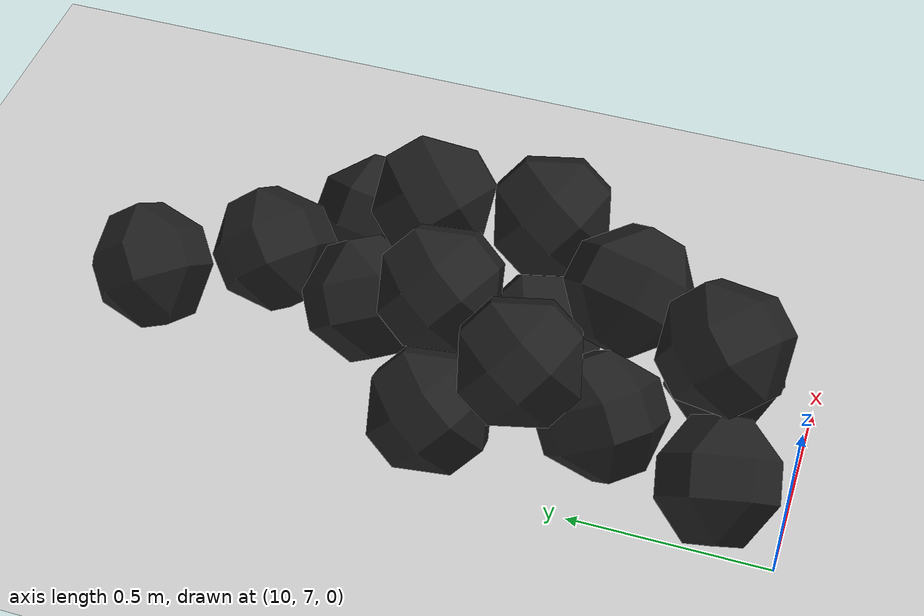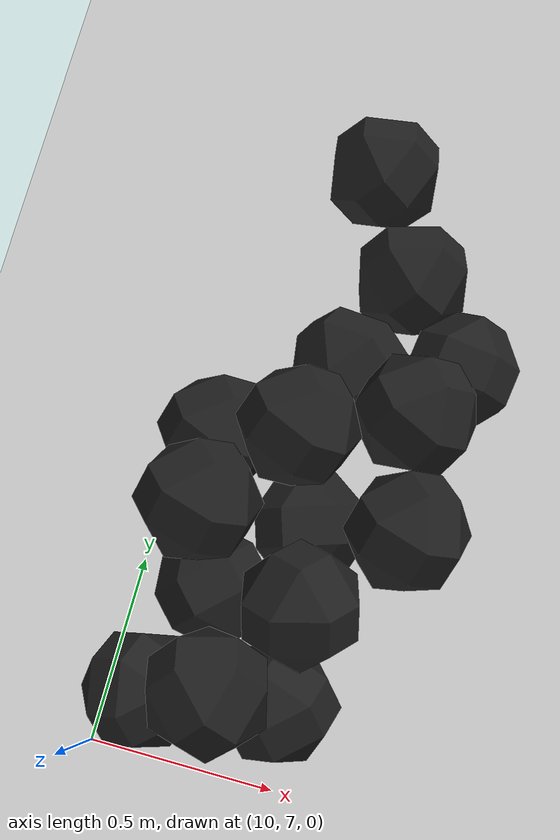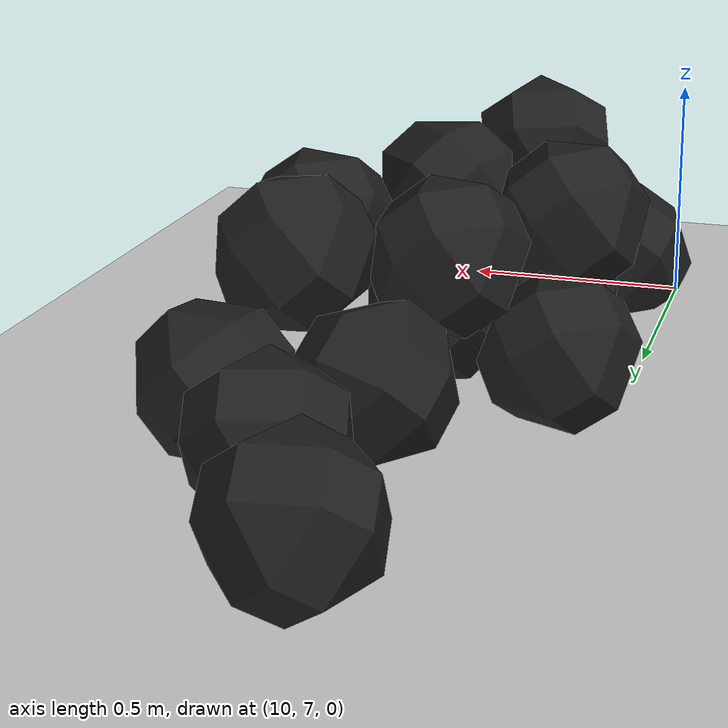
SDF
<sdf version="1.7">
 <world name="default">
  <model name="ground_plane">
   <static>1</static>
   <link name="link">
    <collision name="collision">
     <geometry><plane><normal>0 0 1</normal><size>100 100</size></plane></geometry>
     <surface><friction><ode><mu>100</mu><mu2>50</mu2></ode></friction></surface>
    </collision>
    <visual name="visual">
     <cast_shadows>0</cast_shadows>
     <geometry><plane><normal>0 0 1</normal><size>100 100</size></plane></geometry>
     <material>
      <script><uri>file://media/materials/scripts/gazebo.material</uri><name>Gazebo/Grey</name></script>
     </material>
    </visual>
   </link>
  </model>
  <model name="haoduomiantiaa_11">
   <link name="link_0">
    <inertial>
     <mass>0.2</mass>
     <inertia>
      <ixx>0.166667</ixx>
      <ixy>0</ixy>
      <ixz>0</ixz>
      <iyy>0.166667</iyy>
      <iyz>0</iyz>
      <izz>0.166667</izz>
     </inertia>
    </inertial>
    <visual name="visual">
     <geometry>
      <mesh>
       <uri>/home/lihaoyang/catkin_ws/src/pudong_gazebo/world/stl/haoduomianti.stl</uri>
       <scale>1 1 1</scale>
      </mesh>
     </geometry>
     <material>
      <lighting>1</lighting>
      <script><uri>file://media/materials/scripts/gazebo.material</uri><name>Gazebo/Black</name></script>
      <shader type="pixel"><normal_map>__default__</normal_map></shader>
      <ambient>0.3 0.3 0.3 1</ambient>
      <diffuse>0.7 0.7 0.7 1</diffuse>
      <specular>0.01 0.01 0.01 1</specular>
      <emissive>0 0 0 1</emissive>
     </material>
    </visual>
    <collision name="collision">
     <geometry>
      <mesh>
       <uri>/home/lihaoyang/catkin_ws/src/pudong_gazebo/world/stl/haoduomianti.stl</uri>
       <scale>1 1 1</scale>
      </mesh>
     </geometry>
     <surface>
      <friction>
       <ode><mu>1</mu><mu2>1</mu2><fdir1>0 0 0</fdir1><slip1>0</slip1><slip2>0</slip2></ode>
       <torsional>
        <coefficient>1</coefficient>
        <patch_radius>0</patch_radius>
        <surface_radius>0</surface_radius>
        <use_patch_radius>1</use_patch_radius>
        <ode><slip>0</slip></ode>
       </torsional>
      </friction>
      <bounce><restitution_coefficient>0</restitution_coefficient><threshold>1e+06</threshold></bounce>
      <contact>
       <collide_without_contact>0</collide_without_contact>
       <collide_without_contact_bitmask>1</collide_without_contact_bitmask>
       <collide_bitmask>1</collide_bitmask>
       <ode>
        <soft_cfm>0</soft_cfm>
        <soft_erp>0.2</soft_erp>
        <kp>1e+13</kp>
        <kd>1</kd>
        <max_vel>0.01</max_vel>
        <min_depth>0</min_depth>
       </ode>
       <bullet>
        <split_impulse>1</split_impulse>
        <split_impulse_penetration_threshold>-0.01</split_impulse_penetration_threshold>
        <soft_cfm>0</soft_cfm>
        <soft_erp>0.2</soft_erp>
        <kp>1e+13</kp>
        <kd>1</kd>
       </bullet>
      </contact>
     </surface>
    </collision>
   </link>
   <static>0</static>
   <pose>10.3108 7.37183 -0.074737 0.055494 -0.784628 0.711347</pose>
  </model>
  <model name="haoduomiantiaa_21">
   <link name="link_0">
    <inertial>
     <mass>0.2</mass>
     <inertia>
      <ixx>0.166667</ixx>
      <ixy>0</ixy>
      <ixz>0</ixz>
      <iyy>0.166667</iyy>
      <iyz>0</iyz>
      <izz>0.166667</izz>
     </inertia>
    </inertial>
    <visual name="visual">
     <geometry>
      <mesh>
       <uri>/home/lihaoyang/catkin_ws/src/pudong_gazebo/world/stl/haoduomianti.stl</uri>
       <scale>1 1 1</scale>
      </mesh>
     </geometry>
     <material>
      <lighting>1</lighting>
      <script><uri>file://media/materials/scripts/gazebo.material</uri><name>Gazebo/Black</name></script>
      <shader type="pixel"><normal_map>__default__</normal_map></shader>
      <ambient>0.3 0.3 0.3 1</ambient>
      <diffuse>0.7 0.7 0.7 1</diffuse>
      <specular>0.01 0.01 0.01 1</specular>
      <emissive>0 0 0 1</emissive>
     </material>
    </visual>
    <collision name="collision">
     <geometry>
      <mesh>
       <uri>/home/lihaoyang/catkin_ws/src/pudong_gazebo/world/stl/haoduomianti.stl</uri>
       <scale>1 1 1</scale>
      </mesh>
     </geometry>
     <surface>
      <friction>
       <ode><mu>1</mu><mu2>1</mu2><fdir1>0 0 0</fdir1><slip1>0</slip1><slip2>0</slip2></ode>
       <torsional>
        <coefficient>1</coefficient>
        <patch_radius>0</patch_radius>
        <surface_radius>0</surface_radius>
        <use_patch_radius>1</use_patch_radius>
        <ode><slip>0</slip></ode>
       </torsional>
      </friction>
      <bounce><restitution_coefficient>0</restitution_coefficient><threshold>1e+06</threshold></bounce>
      <contact>
       <collide_without_contact>0</collide_without_contact>
       <collide_without_contact_bitmask>1</collide_without_contact_bitmask>
       <collide_bitmask>1</collide_bitmask>
       <ode>
        <soft_cfm>0</soft_cfm>
        <soft_erp>0.2</soft_erp>
        <kp>1e+13</kp>
        <kd>1</kd>
        <max_vel>0.01</max_vel>
        <min_depth>0</min_depth>
       </ode>
       <bullet>
        <split_impulse>1</split_impulse>
        <split_impulse_penetration_threshold>-0.01</split_impulse_penetration_threshold>
        <soft_cfm>0</soft_cfm>
        <soft_erp>0.2</soft_erp>
        <kp>1e+13</kp>
        <kd>1</kd>
       </bullet>
      </contact>
     </surface>
    </collision>
   </link>
   <static>0</static>
   <pose>10.6792 8.07566 -0.079109 1.44966 -0.781731 3.09453</pose>
  </model>
  <model name="haoduomiantiaa_23">
   <link name="link_0">
    <inertial>
     <mass>0.2</mass>
     <inertia>
      <ixx>0.166667</ixx>
      <ixy>0</ixy>
      <ixz>0</ixz>
      <iyy>0.166667</iyy>
      <iyz>0</iyz>
      <izz>0.166667</izz>
     </inertia>
    </inertial>
    <visual name="visual">
     <geometry>
      <mesh>
       <uri>/home/lihaoyang/catkin_ws/src/pudong_gazebo/world/stl/haoduomianti.stl</uri>
       <scale>1 1 1</scale>
      </mesh>
     </geometry>
     <material>
      <lighting>1</lighting>
      <script><uri>file://media/materials/scripts/gazebo.material</uri><name>Gazebo/Black</name></script>
      <shader type="pixel"><normal_map>__default__</normal_map></shader>
      <ambient>0.3 0.3 0.3 1</ambient>
      <diffuse>0.7 0.7 0.7 1</diffuse>
      <specular>0.01 0.01 0.01 1</specular>
      <emissive>0 0 0 1</emissive>
     </material>
    </visual>
    <collision name="collision">
     <geometry>
      <mesh>
       <uri>/home/lihaoyang/catkin_ws/src/pudong_gazebo/world/stl/haoduomianti.stl</uri>
       <scale>1 1 1</scale>
      </mesh>
     </geometry>
     <surface>
      <friction>
       <ode><mu>1</mu><mu2>1</mu2><fdir1>0 0 0</fdir1><slip1>0</slip1><slip2>0</slip2></ode>
       <torsional>
        <coefficient>1</coefficient>
        <patch_radius>0</patch_radius>
        <surface_radius>0</surface_radius>
        <use_patch_radius>1</use_patch_radius>
        <ode><slip>0</slip></ode>
       </torsional>
      </friction>
      <bounce><restitution_coefficient>0</restitution_coefficient><threshold>1e+06</threshold></bounce>
      <contact>
       <collide_without_contact>0</collide_without_contact>
       <collide_without_contact_bitmask>1</collide_without_contact_bitmask>
       <collide_bitmask>1</collide_bitmask>
       <ode>
        <soft_cfm>0</soft_cfm>
        <soft_erp>0.2</soft_erp>
        <kp>1e+13</kp>
        <kd>1</kd>
        <max_vel>0.01</max_vel>
        <min_depth>0</min_depth>
       </ode>
       <bullet>
        <split_impulse>1</split_impulse>
        <split_impulse_penetration_threshold>-0.01</split_impulse_penetration_threshold>
        <soft_cfm>0</soft_cfm>
        <soft_erp>0.2</soft_erp>
        <kp>1e+13</kp>
        <kd>1</kd>
       </bullet>
      </contact>
     </surface>
    </collision>
   </link>
   <static>0</static>
   <pose>10.354 8.69849 -0.115479 0.785404 -0.615481 2.76349</pose>
  </model>
  <model name="haoduomiantiaa_28">
   <link name="link_0">
    <inertial>
     <mass>0.2</mass>
     <inertia>
      <ixx>0.166667</ixx>
      <ixy>0</ixy>
      <ixz>0</ixz>
      <iyy>0.166667</iyy>
      <iyz>0</iyz>
      <izz>0.166667</izz>
     </inertia>
    </inertial>
    <visual name="visual">
     <geometry>
      <mesh>
       <uri>/home/lihaoyang/catkin_ws/src/pudong_gazebo/world/stl/haoduomianti.stl</uri>
       <scale>1 1 1</scale>
      </mesh>
     </geometry>
     <material>
      <lighting>1</lighting>
      <script><uri>file://media/materials/scripts/gazebo.material</uri><name>Gazebo/Black</name></script>
      <shader type="pixel"><normal_map>__default__</normal_map></shader>
      <ambient>0.3 0.3 0.3 1</ambient>
      <diffuse>0.7 0.7 0.7 1</diffuse>
      <specular>0.01 0.01 0.01 1</specular>
      <emissive>0 0 0 1</emissive>
     </material>
    </visual>
    <collision name="collision">
     <geometry>
      <mesh>
       <uri>/home/lihaoyang/catkin_ws/src/pudong_gazebo/world/stl/haoduomianti.stl</uri>
       <scale>1 1 1</scale>
      </mesh>
     </geometry>
     <surface>
      <friction>
       <ode><mu>1</mu><mu2>1</mu2><fdir1>0 0 0</fdir1><slip1>0</slip1><slip2>0</slip2></ode>
       <torsional>
        <coefficient>1</coefficient>
        <patch_radius>0</patch_radius>
        <surface_radius>0</surface_radius>
        <use_patch_radius>1</use_patch_radius>
        <ode><slip>0</slip></ode>
       </torsional>
      </friction>
      <bounce><restitution_coefficient>0</restitution_coefficient><threshold>1e+06</threshold></bounce>
      <contact>
       <collide_without_contact>0</collide_without_contact>
       <collide_without_contact_bitmask>1</collide_without_contact_bitmask>
       <collide_bitmask>1</collide_bitmask>
       <ode>
        <soft_cfm>0</soft_cfm>
        <soft_erp>0.2</soft_erp>
        <kp>1e+13</kp>
        <kd>1</kd>
        <max_vel>0.01</max_vel>
        <min_depth>0</min_depth>
       </ode>
       <bullet>
        <split_impulse>1</split_impulse>
        <split_impulse_penetration_threshold>-0.01</split_impulse_penetration_threshold>
        <soft_cfm>0</soft_cfm>
        <soft_erp>0.2</soft_erp>
        <kp>1e+13</kp>
        <kd>1</kd>
       </bullet>
      </contact>
     </surface>
    </collision>
   </link>
   <static>0</static>
   <pose>10.4571 7.22847 -0.113943 0.78693 -0.620922 -1.88374</pose>
  </model>
  <model name="haoduomiantiaa_31">
   <link name="link_0">
    <inertial>
     <mass>0.2</mass>
     <inertia>
      <ixx>0.166667</ixx>
      <ixy>0</ixy>
      <ixz>0</ixz>
      <iyy>0.166667</iyy>
      <iyz>0</iyz>
      <izz>0.166667</izz>
     </inertia>
    </inertial>
    <visual name="visual">
     <geometry>
      <mesh>
       <uri>/home/lihaoyang/catkin_ws/src/pudong_gazebo/world/stl/haoduomianti.stl</uri>
       <scale>1 1 1</scale>
      </mesh>
     </geometry>
     <material>
      <lighting>1</lighting>
      <script><uri>file://media/materials/scripts/gazebo.material</uri><name>Gazebo/Black</name></script>
      <shader type="pixel"><normal_map>__default__</normal_map></shader>
      <ambient>0.3 0.3 0.3 1</ambient>
      <diffuse>0.7 0.7 0.7 1</diffuse>
      <specular>0.01 0.01 0.01 1</specular>
      <emissive>0 0 0 1</emissive>
     </material>
    </visual>
    <collision name="collision">
     <geometry>
      <mesh>
       <uri>/home/lihaoyang/catkin_ws/src/pudong_gazebo/world/stl/haoduomianti.stl</uri>
       <scale>1 1 1</scale>
      </mesh>
     </geometry>
     <surface>
      <friction>
       <ode><mu>1</mu><mu2>1</mu2><fdir1>0 0 0</fdir1><slip1>0</slip1><slip2>0</slip2></ode>
       <torsional>
        <coefficient>1</coefficient>
        <patch_radius>0</patch_radius>
        <surface_radius>0</surface_radius>
        <use_patch_radius>1</use_patch_radius>
        <ode><slip>0</slip></ode>
       </torsional>
      </friction>
      <bounce><restitution_coefficient>0</restitution_coefficient><threshold>1e+06</threshold></bounce>
      <contact>
       <collide_without_contact>0</collide_without_contact>
       <collide_without_contact_bitmask>1</collide_without_contact_bitmask>
       <collide_bitmask>1</collide_bitmask>
       <ode>
        <soft_cfm>0</soft_cfm>
        <soft_erp>0.2</soft_erp>
        <kp>1e+13</kp>
        <kd>1</kd>
        <max_vel>0.01</max_vel>
        <min_depth>0</min_depth>
       </ode>
       <bullet>
        <split_impulse>1</split_impulse>
        <split_impulse_penetration_threshold>-0.01</split_impulse_penetration_threshold>
        <soft_cfm>0</soft_cfm>
        <soft_erp>0.2</soft_erp>
        <kp>1e+13</kp>
        <kd>1</kd>
       </bullet>
      </contact>
     </surface>
    </collision>
   </link>
   <static>0</static>
   <pose>10.4564 7.56483 -0.078263 1.46181 -0.782426 -2.746</pose>
  </model>
  <model name="haoduomiantiaa_56">
   <link name="link_0">
    <inertial>
     <mass>0.2</mass>
     <inertia>
      <ixx>0.166667</ixx>
      <ixy>0</ixy>
      <ixz>0</ixz>
      <iyy>0.166667</iyy>
      <iyz>0</iyz>
      <izz>0.166667</izz>
     </inertia>
    </inertial>
    <visual name="visual">
     <geometry>
      <mesh>
       <uri>/home/lihaoyang/catkin_ws/src/pudong_gazebo/world/stl/haoduomianti.stl</uri>
       <scale>1 1 1</scale>
      </mesh>
     </geometry>
     <material>
      <lighting>1</lighting>
      <script><uri>file://media/materials/scripts/gazebo.material</uri><name>Gazebo/Black</name></script>
      <shader type="pixel"><normal_map>__default__</normal_map></shader>
      <ambient>0.3 0.3 0.3 1</ambient>
      <diffuse>0.7 0.7 0.7 1</diffuse>
      <specular>0.01 0.01 0.01 1</specular>
      <emissive>0 0 0 1</emissive>
     </material>
    </visual>
    <collision name="collision">
     <geometry>
      <mesh>
       <uri>/home/lihaoyang/catkin_ws/src/pudong_gazebo/world/stl/haoduomianti.stl</uri>
       <scale>1 1 1</scale>
      </mesh>
     </geometry>
     <surface>
      <friction>
       <ode><mu>1</mu><mu2>1</mu2><fdir1>0 0 0</fdir1><slip1>0</slip1><slip2>0</slip2></ode>
       <torsional>
        <coefficient>1</coefficient>
        <patch_radius>0</patch_radius>
        <surface_radius>0</surface_radius>
        <use_patch_radius>1</use_patch_radius>
        <ode><slip>0</slip></ode>
       </torsional>
      </friction>
      <bounce><restitution_coefficient>0</restitution_coefficient><threshold>1e+06</threshold></bounce>
      <contact>
       <collide_without_contact>0</collide_without_contact>
       <collide_without_contact_bitmask>1</collide_without_contact_bitmask>
       <collide_bitmask>1</collide_bitmask>
       <ode>
        <soft_cfm>0</soft_cfm>
        <soft_erp>0.2</soft_erp>
        <kp>1e+13</kp>
        <kd>1</kd>
        <max_vel>0.01</max_vel>
        <min_depth>0</min_depth>
       </ode>
       <bullet>
        <split_impulse>1</split_impulse>
        <split_impulse_penetration_threshold>-0.01</split_impulse_penetration_threshold>
        <soft_cfm>0</soft_cfm>
        <soft_erp>0.2</soft_erp>
        <kp>1e+13</kp>
        <kd>1</kd>
       </bullet>
      </contact>
     </surface>
    </collision>
   </link>
   <static>0</static>
   <pose>10.4461 7.48404 0.083698 0.808611 -0.599981 -0.281819</pose>
  </model>
  <model name="haoduomiantiaa_58">
   <link name="link_0">
    <inertial>
     <mass>0.2</mass>
     <inertia>
      <ixx>0.166667</ixx>
      <ixy>0</ixy>
      <ixz>0</ixz>
      <iyy>0.166667</iyy>
      <iyz>0</iyz>
      <izz>0.166667</izz>
     </inertia>
    </inertial>
    <visual name="visual">
     <geometry>
      <mesh>
       <uri>/home/lihaoyang/catkin_ws/src/pudong_gazebo/world/stl/haoduomianti.stl</uri>
       <scale>1 1 1</scale>
      </mesh>
     </geometry>
     <material>
      <lighting>1</lighting>
      <script><uri>file://media/materials/scripts/gazebo.material</uri><name>Gazebo/Black</name></script>
      <shader type="pixel"><normal_map>__default__</normal_map></shader>
      <ambient>0.3 0.3 0.3 1</ambient>
      <diffuse>0.7 0.7 0.7 1</diffuse>
      <specular>0.01 0.01 0.01 1</specular>
      <emissive>0 0 0 1</emissive>
     </material>
    </visual>
    <collision name="collision">
     <geometry>
      <mesh>
       <uri>/home/lihaoyang/catkin_ws/src/pudong_gazebo/world/stl/haoduomianti.stl</uri>
       <scale>1 1 1</scale>
      </mesh>
     </geometry>
     <surface>
      <friction>
       <ode><mu>1</mu><mu2>1</mu2><fdir1>0 0 0</fdir1><slip1>0</slip1><slip2>0</slip2></ode>
       <torsional>
        <coefficient>1</coefficient>
        <patch_radius>0</patch_radius>
        <surface_radius>0</surface_radius>
        <use_patch_radius>1</use_patch_radius>
        <ode><slip>0</slip></ode>
       </torsional>
      </friction>
      <bounce><restitution_coefficient>0</restitution_coefficient><threshold>1e+06</threshold></bounce>
      <contact>
       <collide_without_contact>0</collide_without_contact>
       <collide_without_contact_bitmask>1</collide_without_contact_bitmask>
       <collide_bitmask>1</collide_bitmask>
       <ode>
        <soft_cfm>0</soft_cfm>
        <soft_erp>0.2</soft_erp>
        <kp>1e+13</kp>
        <kd>1</kd>
        <max_vel>0.01</max_vel>
        <min_depth>0</min_depth>
       </ode>
       <bullet>
        <split_impulse>1</split_impulse>
        <split_impulse_penetration_threshold>-0.01</split_impulse_penetration_threshold>
        <soft_cfm>0</soft_cfm>
        <soft_erp>0.2</soft_erp>
        <kp>1e+13</kp>
        <kd>1</kd>
       </bullet>
      </contact>
     </surface>
    </collision>
   </link>
   <static>0</static>
   <pose>10.3169 7.90973 0.075776 0.742973 -0.604494 -0.903565</pose>
  </model>
  <model name="haoduomiantiaa_68">
   <link name="link_0">
    <inertial>
     <mass>0.2</mass>
     <inertia>
      <ixx>0.166667</ixx>
      <ixy>0</ixy>
      <ixz>0</ixz>
      <iyy>0.166667</iyy>
      <iyz>0</iyz>
      <izz>0.166667</izz>
     </inertia>
    </inertial>
    <visual name="visual">
     <geometry>
      <mesh>
       <uri>/home/lihaoyang/catkin_ws/src/pudong_gazebo/world/stl/haoduomianti.stl</uri>
       <scale>1 1 1</scale>
      </mesh>
     </geometry>
     <material>
      <lighting>1</lighting>
      <script><uri>file://media/materials/scripts/gazebo.material</uri><name>Gazebo/Black</name></script>
      <shader type="pixel"><normal_map>__default__</normal_map></shader>
      <ambient>0.3 0.3 0.3 1</ambient>
      <diffuse>0.7 0.7 0.7 1</diffuse>
      <specular>0.01 0.01 0.01 1</specular>
      <emissive>0 0 0 1</emissive>
     </material>
    </visual>
    <collision name="collision">
     <geometry>
      <mesh>
       <uri>/home/lihaoyang/catkin_ws/src/pudong_gazebo/world/stl/haoduomianti.stl</uri>
       <scale>1 1 1</scale>
      </mesh>
     </geometry>
     <surface>
      <friction>
       <ode><mu>1</mu><mu2>1</mu2><fdir1>0 0 0</fdir1><slip1>0</slip1><slip2>0</slip2></ode>
       <torsional>
        <coefficient>1</coefficient>
        <patch_radius>0</patch_radius>
        <surface_radius>0</surface_radius>
        <use_patch_radius>1</use_patch_radius>
        <ode><slip>0</slip></ode>
       </torsional>
      </friction>
      <bounce><restitution_coefficient>0</restitution_coefficient><threshold>1e+06</threshold></bounce>
      <contact>
       <collide_without_contact>0</collide_without_contact>
       <collide_without_contact_bitmask>1</collide_without_contact_bitmask>
       <collide_bitmask>1</collide_bitmask>
       <ode>
        <soft_cfm>0</soft_cfm>
        <soft_erp>0.2</soft_erp>
        <kp>1e+13</kp>
        <kd>1</kd>
        <max_vel>0.01</max_vel>
        <min_depth>0</min_depth>
       </ode>
       <bullet>
        <split_impulse>1</split_impulse>
        <split_impulse_penetration_threshold>-0.01</split_impulse_penetration_threshold>
        <soft_cfm>0</soft_cfm>
        <soft_erp>0.2</soft_erp>
        <kp>1e+13</kp>
        <kd>1</kd>
       </bullet>
      </contact>
     </surface>
    </collision>
   </link>
   <static>0</static>
   <pose>10.4593 8.08909 -0.099141 0.444669 -0.734312 0.570956</pose>
  </model>
  <model name="haoduomiantiaa_70">
   <link name="link_0">
    <inertial>
     <mass>0.2</mass>
     <inertia>
      <ixx>0.166667</ixx>
      <ixy>0</ixy>
      <ixz>0</ixz>
      <iyy>0.166667</iyy>
      <iyz>0</iyz>
      <izz>0.166667</izz>
     </inertia>
    </inertial>
    <visual name="visual">
     <geometry>
      <mesh>
       <uri>/home/lihaoyang/catkin_ws/src/pudong_gazebo/world/stl/haoduomianti.stl</uri>
       <scale>1 1 1</scale>
      </mesh>
     </geometry>
     <material>
      <lighting>1</lighting>
      <script><uri>file://media/materials/scripts/gazebo.material</uri><name>Gazebo/Black</name></script>
      <shader type="pixel"><normal_map>__default__</normal_map></shader>
      <ambient>0.3 0.3 0.3 1</ambient>
      <diffuse>0.7 0.7 0.7 1</diffuse>
      <specular>0.01 0.01 0.01 1</specular>
      <emissive>0 0 0 1</emissive>
     </material>
    </visual>
    <collision name="collision">
     <geometry>
      <mesh>
       <uri>/home/lihaoyang/catkin_ws/src/pudong_gazebo/world/stl/haoduomianti.stl</uri>
       <scale>1 1 1</scale>
      </mesh>
     </geometry>
     <surface>
      <friction>
       <ode><mu>1</mu><mu2>1</mu2><fdir1>0 0 0</fdir1><slip1>0</slip1><slip2>0</slip2></ode>
       <torsional>
        <coefficient>1</coefficient>
        <patch_radius>0</patch_radius>
        <surface_radius>0</surface_radius>
        <use_patch_radius>1</use_patch_radius>
        <ode><slip>0</slip></ode>
       </torsional>
      </friction>
      <bounce><restitution_coefficient>0</restitution_coefficient><threshold>1e+06</threshold></bounce>
      <contact>
       <collide_without_contact>0</collide_without_contact>
       <collide_without_contact_bitmask>1</collide_without_contact_bitmask>
       <collide_bitmask>1</collide_bitmask>
       <ode>
        <soft_cfm>0</soft_cfm>
        <soft_erp>0.2</soft_erp>
        <kp>1e+13</kp>
        <kd>1</kd>
        <max_vel>0.01</max_vel>
        <min_depth>0</min_depth>
       </ode>
       <bullet>
        <split_impulse>1</split_impulse>
        <split_impulse_penetration_threshold>-0.01</split_impulse_penetration_threshold>
        <soft_cfm>0</soft_cfm>
        <soft_erp>0.2</soft_erp>
        <kp>1e+13</kp>
        <kd>1</kd>
       </bullet>
      </contact>
     </surface>
    </collision>
   </link>
   <static>0</static>
   <pose>10.1085 7.17125 -0.118329 0.784716 -0.615698 0.202742</pose>
  </model>
  <model name="haoduomiantiaa_72">
   <link name="link_0">
    <inertial>
     <mass>0.2</mass>
     <inertia>
      <ixx>0.166667</ixx>
      <ixy>0</ixy>
      <ixz>0</ixz>
      <iyy>0.166667</iyy>
      <iyz>0</iyz>
      <izz>0.166667</izz>
     </inertia>
    </inertial>
    <visual name="visual">
     <geometry>
      <mesh>
       <uri>/home/lihaoyang/catkin_ws/src/pudong_gazebo/world/stl/haoduomianti.stl</uri>
       <scale>1 1 1</scale>
      </mesh>
     </geometry>
     <material>
      <lighting>1</lighting>
      <script><uri>file://media/materials/scripts/gazebo.material</uri><name>Gazebo/Black</name></script>
      <shader type="pixel"><normal_map>__default__</normal_map></shader>
      <ambient>0.3 0.3 0.3 1</ambient>
      <diffuse>0.7 0.7 0.7 1</diffuse>
      <specular>0.01 0.01 0.01 1</specular>
      <emissive>0 0 0 1</emissive>
     </material>
    </visual>
    <collision name="collision">
     <geometry>
      <mesh>
       <uri>/home/lihaoyang/catkin_ws/src/pudong_gazebo/world/stl/haoduomianti.stl</uri>
       <scale>1 1 1</scale>
      </mesh>
     </geometry>
     <surface>
      <friction>
       <ode><mu>1</mu><mu2>1</mu2><fdir1>0 0 0</fdir1><slip1>0</slip1><slip2>0</slip2></ode>
       <torsional>
        <coefficient>1</coefficient>
        <patch_radius>0</patch_radius>
        <surface_radius>0</surface_radius>
        <use_patch_radius>1</use_patch_radius>
        <ode><slip>0</slip></ode>
       </torsional>
      </friction>
      <bounce><restitution_coefficient>0</restitution_coefficient><threshold>1e+06</threshold></bounce>
      <contact>
       <collide_without_contact>0</collide_without_contact>
       <collide_without_contact_bitmask>1</collide_without_contact_bitmask>
       <collide_bitmask>1</collide_bitmask>
       <ode>
        <soft_cfm>0</soft_cfm>
        <soft_erp>0.2</soft_erp>
        <kp>1e+13</kp>
        <kd>1</kd>
        <max_vel>0.01</max_vel>
        <min_depth>0</min_depth>
       </ode>
       <bullet>
        <split_impulse>1</split_impulse>
        <split_impulse_penetration_threshold>-0.01</split_impulse_penetration_threshold>
        <soft_cfm>0</soft_cfm>
        <soft_erp>0.2</soft_erp>
        <kp>1e+13</kp>
        <kd>1</kd>
       </bullet>
      </contact>
     </surface>
    </collision>
   </link>
   <static>0</static>
   <pose>10.5047 8.42121 -0.115477 0.785403 -0.615458 2.88543</pose>
  </model>
  <model name="haoduomiantiaa_94">
   <link name="link_0">
    <inertial>
     <mass>0.2</mass>
     <inertia>
      <ixx>0.166667</ixx>
      <ixy>0</ixy>
      <ixz>0</ixz>
      <iyy>0.166667</iyy>
      <iyz>0</iyz>
      <izz>0.166667</izz>
     </inertia>
    </inertial>
    <visual name="visual">
     <geometry>
      <mesh>
       <uri>/home/lihaoyang/catkin_ws/src/pudong_gazebo/world/stl/haoduomianti.stl</uri>
       <scale>1 1 1</scale>
      </mesh>
     </geometry>
     <material>
      <lighting>1</lighting>
      <script><uri>file://media/materials/scripts/gazebo.material</uri><name>Gazebo/Black</name></script>
      <shader type="pixel"><normal_map>__default__</normal_map></shader>
      <ambient>0.3 0.3 0.3 1</ambient>
      <diffuse>0.7 0.7 0.7 1</diffuse>
      <specular>0.01 0.01 0.01 1</specular>
      <emissive>0 0 0 1</emissive>
     </material>
    </visual>
    <collision name="collision">
     <geometry>
      <mesh>
       <uri>/home/lihaoyang/catkin_ws/src/pudong_gazebo/world/stl/haoduomianti.stl</uri>
       <scale>1 1 1</scale>
      </mesh>
     </geometry>
     <surface>
      <friction>
       <ode><mu>1</mu><mu2>1</mu2><fdir1>0 0 0</fdir1><slip1>0</slip1><slip2>0</slip2></ode>
       <torsional>
        <coefficient>1</coefficient>
        <patch_radius>0</patch_radius>
        <surface_radius>0</surface_radius>
        <use_patch_radius>1</use_patch_radius>
        <ode><slip>0</slip></ode>
       </torsional>
      </friction>
      <bounce><restitution_coefficient>0</restitution_coefficient><threshold>1e+06</threshold></bounce>
      <contact>
       <collide_without_contact>0</collide_without_contact>
       <collide_without_contact_bitmask>1</collide_without_contact_bitmask>
       <collide_bitmask>1</collide_bitmask>
       <ode>
        <soft_cfm>0</soft_cfm>
        <soft_erp>0.2</soft_erp>
        <kp>1e+13</kp>
        <kd>1</kd>
        <max_vel>0.01</max_vel>
        <min_depth>0</min_depth>
       </ode>
       <bullet>
        <split_impulse>1</split_impulse>
        <split_impulse_penetration_threshold>-0.01</split_impulse_penetration_threshold>
        <soft_cfm>0</soft_cfm>
        <soft_erp>0.2</soft_erp>
        <kp>1e+13</kp>
        <kd>1</kd>
       </bullet>
      </contact>
     </surface>
    </collision>
   </link>
   <static>0</static>
   <pose>10.6628 7.72441 0.062105 0.792919 -0.637635 -0.825639</pose>
  </model>
  <model name="haoduomiantiaa_110">
   <link name="link_0">
    <inertial>
     <mass>0.2</mass>
     <inertia>
      <ixx>0.166667</ixx>
      <ixy>0</ixy>
      <ixz>0</ixz>
      <iyy>0.166667</iyy>
      <iyz>0</iyz>
      <izz>0.166667</izz>
     </inertia>
    </inertial>
    <visual name="visual">
     <geometry>
      <mesh>
       <uri>/home/lihaoyang/catkin_ws/src/pudong_gazebo/world/stl/haoduomianti.stl</uri>
       <scale>1 1 1</scale>
      </mesh>
     </geometry>
     <material>
      <lighting>1</lighting>
      <script><uri>file://media/materials/scripts/gazebo.material</uri><name>Gazebo/Black</name></script>
      <shader type="pixel"><normal_map>__default__</normal_map></shader>
      <ambient>0.3 0.3 0.3 1</ambient>
      <diffuse>0.7 0.7 0.7 1</diffuse>
      <specular>0.01 0.01 0.01 1</specular>
      <emissive>0 0 0 1</emissive>
     </material>
    </visual>
    <collision name="collision">
     <geometry>
      <mesh>
       <uri>/home/lihaoyang/catkin_ws/src/pudong_gazebo/world/stl/haoduomianti.stl</uri>
       <scale>1 1 1</scale>
      </mesh>
     </geometry>
     <surface>
      <friction>
       <ode><mu>1</mu><mu2>1</mu2><fdir1>0 0 0</fdir1><slip1>0</slip1><slip2>0</slip2></ode>
       <torsional>
        <coefficient>1</coefficient>
        <patch_radius>0</patch_radius>
        <surface_radius>0</surface_radius>
        <use_patch_radius>1</use_patch_radius>
        <ode><slip>0</slip></ode>
       </torsional>
      </friction>
      <bounce><restitution_coefficient>0</restitution_coefficient><threshold>1e+06</threshold></bounce>
      <contact>
       <collide_without_contact>0</collide_without_contact>
       <collide_without_contact_bitmask>1</collide_without_contact_bitmask>
       <collide_bitmask>1</collide_bitmask>
       <ode>
        <soft_cfm>0</soft_cfm>
        <soft_erp>0.2</soft_erp>
        <kp>1e+13</kp>
        <kd>1</kd>
        <max_vel>0.01</max_vel>
        <min_depth>0</min_depth>
       </ode>
       <bullet>
        <split_impulse>1</split_impulse>
        <split_impulse_penetration_threshold>-0.01</split_impulse_penetration_threshold>
        <soft_cfm>0</soft_cfm>
        <soft_erp>0.2</soft_erp>
        <kp>1e+13</kp>
        <kd>1</kd>
       </bullet>
      </contact>
     </surface>
    </collision>
   </link>
   <static>0</static>
   <pose>10.2864 7.18923 0.134529 0.726223 -0.720334 -1.27016</pose>
  </model>
  <model name="haoduomiantiaa_112">
   <link name="link_0">
    <inertial>
     <mass>0.2</mass>
     <inertia>
      <ixx>0.166667</ixx>
      <ixy>0</ixy>
      <ixz>0</ixz>
      <iyy>0.166667</iyy>
      <iyz>0</iyz>
      <izz>0.166667</izz>
     </inertia>
    </inertial>
    <visual name="visual">
     <geometry>
      <mesh>
       <uri>/home/lihaoyang/catkin_ws/src/pudong_gazebo/world/stl/haoduomianti.stl</uri>
       <scale>1 1 1</scale>
      </mesh>
     </geometry>
     <material>
      <lighting>1</lighting>
      <script><uri>file://media/materials/scripts/gazebo.material</uri><name>Gazebo/Black</name></script>
      <shader type="pixel"><normal_map>__default__</normal_map></shader>
      <ambient>0.3 0.3 0.3 1</ambient>
      <diffuse>0.7 0.7 0.7 1</diffuse>
      <specular>0.01 0.01 0.01 1</specular>
      <emissive>0 0 0 1</emissive>
     </material>
    </visual>
    <collision name="collision">
     <geometry>
      <mesh>
       <uri>/home/lihaoyang/catkin_ws/src/pudong_gazebo/world/stl/haoduomianti.stl</uri>
       <scale>1 1 1</scale>
      </mesh>
     </geometry>
     <surface>
      <friction>
       <ode><mu>1</mu><mu2>1</mu2><fdir1>0 0 0</fdir1><slip1>0</slip1><slip2>0</slip2></ode>
       <torsional>
        <coefficient>1</coefficient>
        <patch_radius>0</patch_radius>
        <surface_radius>0</surface_radius>
        <use_patch_radius>1</use_patch_radius>
        <ode><slip>0</slip></ode>
       </torsional>
      </friction>
      <bounce><restitution_coefficient>0</restitution_coefficient><threshold>1e+06</threshold></bounce>
      <contact>
       <collide_without_contact>0</collide_without_contact>
       <collide_without_contact_bitmask>1</collide_without_contact_bitmask>
       <collide_bitmask>1</collide_bitmask>
       <ode>
        <soft_cfm>0</soft_cfm>
        <soft_erp>0.2</soft_erp>
        <kp>1e+13</kp>
        <kd>1</kd>
        <max_vel>0.01</max_vel>
        <min_depth>0</min_depth>
       </ode>
       <bullet>
        <split_impulse>1</split_impulse>
        <split_impulse_penetration_threshold>-0.01</split_impulse_penetration_threshold>
        <soft_cfm>0</soft_cfm>
        <soft_erp>0.2</soft_erp>
        <kp>1e+13</kp>
        <kd>1</kd>
       </bullet>
      </contact>
     </surface>
    </collision>
   </link>
   <static>0</static>
   <pose>10.5669 8.0586 0.09564 0.767495 -0.409057 -0.931185</pose>
  </model>
  <model name="haoduomiantiaa_119">
   <link name="link_0">
    <inertial>
     <mass>0.2</mass>
     <inertia>
      <ixx>0.166667</ixx>
      <ixy>0</ixy>
      <ixz>0</ixz>
      <iyy>0.166667</iyy>
      <iyz>0</iyz>
      <izz>0.166667</izz>
     </inertia>
    </inertial>
    <visual name="visual">
     <geometry>
      <mesh>
       <uri>/home/lihaoyang/catkin_ws/src/pudong_gazebo/world/stl/haoduomianti.stl</uri>
       <scale>1 1 1</scale>
      </mesh>
     </geometry>
     <material>
      <lighting>1</lighting>
      <script><uri>file://media/materials/scripts/gazebo.material</uri><name>Gazebo/Black</name></script>
      <shader type="pixel"><normal_map>__default__</normal_map></shader>
      <ambient>0.3 0.3 0.3 1</ambient>
      <diffuse>0.7 0.7 0.7 1</diffuse>
      <specular>0.01 0.01 0.01 1</specular>
      <emissive>0 0 0 1</emissive>
     </material>
    </visual>
    <collision name="collision">
     <geometry>
      <mesh>
       <uri>/home/lihaoyang/catkin_ws/src/pudong_gazebo/world/stl/haoduomianti.stl</uri>
       <scale>1 1 1</scale>
      </mesh>
     </geometry>
     <surface>
      <friction>
       <ode><mu>1</mu><mu2>1</mu2><fdir1>0 0 0</fdir1><slip1>0</slip1><slip2>0</slip2></ode>
       <torsional>
        <coefficient>1</coefficient>
        <patch_radius>0</patch_radius>
        <surface_radius>0</surface_radius>
        <use_patch_radius>1</use_patch_radius>
        <ode><slip>0</slip></ode>
       </torsional>
      </friction>
      <bounce><restitution_coefficient>0</restitution_coefficient><threshold>1e+06</threshold></bounce>
      <contact>
       <collide_without_contact>0</collide_without_contact>
       <collide_without_contact_bitmask>1</collide_without_contact_bitmask>
       <collide_bitmask>1</collide_bitmask>
       <ode>
        <soft_cfm>0</soft_cfm>
        <soft_erp>0.2</soft_erp>
        <kp>1e+13</kp>
        <kd>1</kd>
        <max_vel>0.01</max_vel>
        <min_depth>0</min_depth>
       </ode>
       <bullet>
        <split_impulse>1</split_impulse>
        <split_impulse_penetration_threshold>-0.01</split_impulse_penetration_threshold>
        <soft_cfm>0</soft_cfm>
        <soft_erp>0.2</soft_erp>
        <kp>1e+13</kp>
        <kd>1</kd>
       </bullet>
      </contact>
     </surface>
    </collision>
   </link>
   <static>0</static>
   <pose>10.1237 7.65791 0.099814 0.790576 -0.667452 -2.90182</pose>
  </model>
  <model name="haoduomiantiaa_132">
   <link name="link_0">
    <inertial>
     <mass>0.2</mass>
     <inertia>
      <ixx>0.166667</ixx>
      <ixy>0</ixy>
      <ixz>0</ixz>
      <iyy>0.166667</iyy>
      <iyz>0</iyz>
      <izz>0.166667</izz>
     </inertia>
    </inertial>
    <visual name="visual">
     <geometry>
      <mesh>
       <uri>/home/lihaoyang/catkin_ws/src/pudong_gazebo/world/stl/haoduomianti.stl</uri>
       <scale>1 1 1</scale>
      </mesh>
     </geometry>
     <material>
      <lighting>1</lighting>
      <script><uri>file://media/materials/scripts/gazebo.material</uri><name>Gazebo/Black</name></script>
      <shader type="pixel"><normal_map>__default__</normal_map></shader>
      <ambient>0.3 0.3 0.3 1</ambient>
      <diffuse>0.7 0.7 0.7 1</diffuse>
      <specular>0.01 0.01 0.01 1</specular>
      <emissive>0 0 0 1</emissive>
     </material>
    </visual>
    <collision name="collision">
     <geometry>
      <mesh>
       <uri>/home/lihaoyang/catkin_ws/src/pudong_gazebo/world/stl/haoduomianti.stl</uri>
       <scale>1 1 1</scale>
      </mesh>
     </geometry>
     <surface>
      <friction>
       <ode><mu>1</mu><mu2>1</mu2><fdir1>0 0 0</fdir1><slip1>0</slip1><slip2>0</slip2></ode>
       <torsional>
        <coefficient>1</coefficient>
        <patch_radius>0</patch_radius>
        <surface_radius>0</surface_radius>
        <use_patch_radius>1</use_patch_radius>
        <ode><slip>0</slip></ode>
       </torsional>
      </friction>
      <bounce><restitution_coefficient>0</restitution_coefficient><threshold>1e+06</threshold></bounce>
      <contact>
       <collide_without_contact>0</collide_without_contact>
       <collide_without_contact_bitmask>1</collide_without_contact_bitmask>
       <collide_bitmask>1</collide_bitmask>
       <ode>
        <soft_cfm>0</soft_cfm>
        <soft_erp>0.2</soft_erp>
        <kp>1e+13</kp>
        <kd>1</kd>
        <max_vel>0.01</max_vel>
        <min_depth>0</min_depth>
       </ode>
       <bullet>
        <split_impulse>1</split_impulse>
        <split_impulse_penetration_threshold>-0.01</split_impulse_penetration_threshold>
        <soft_cfm>0</soft_cfm>
        <soft_erp>0.2</soft_erp>
        <kp>1e+13</kp>
        <kd>1</kd>
       </bullet>
      </contact>
     </surface>
    </collision>
   </link>
   <static>0</static>
   <pose>10.111 7.87221 -0.115752 0.785399 -0.615469 -0.917401</pose>
  </model>
 </world>
</sdf>
